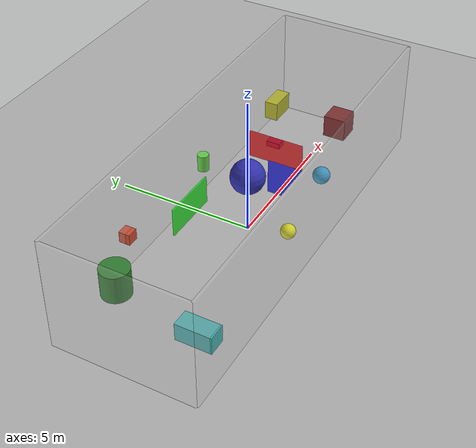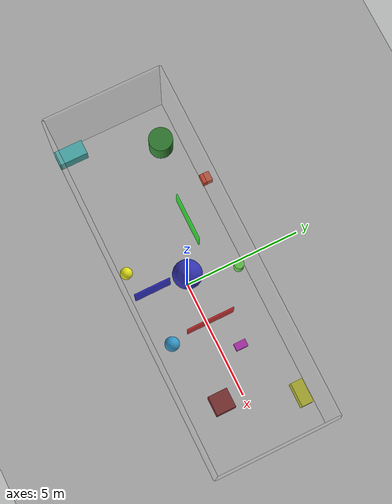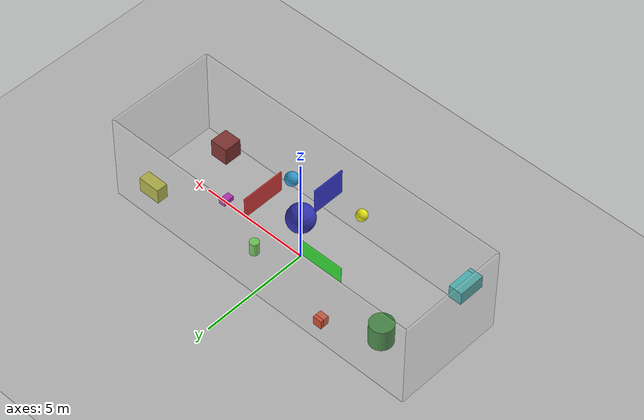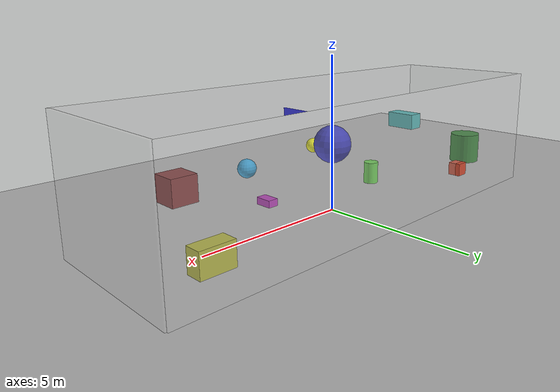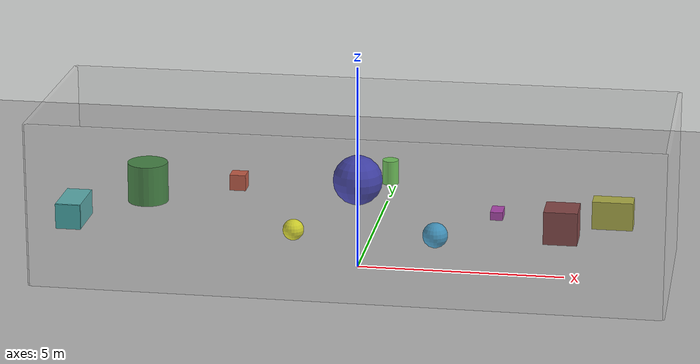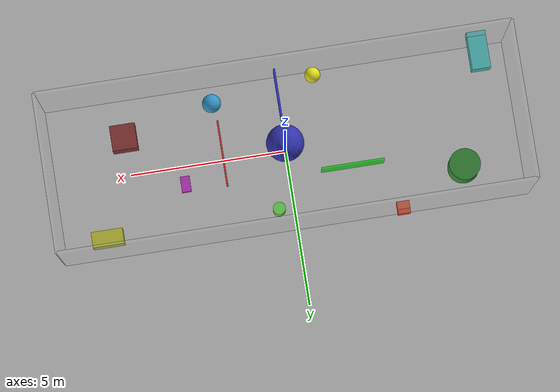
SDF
<?xml version="1.0" ?>
<sdf version="1.7">
    <world name="walled_env">

        <!-- Ground plane -->
        <model name="ground_plane">
            <static>true</static>
            <link name="ground_link">
                <collision name="collision">
                    <geometry>
                        <plane>
                            <normal>0 0 1</normal>
                            <size>15 5</size>
                        </plane>
                    </geometry>
                </collision>
                <visual name="visual">
                    <geometry>
                        <plane>
                            <normal>0 0 1</normal>
                            <size>15 5</size>
                        </plane>
                    </geometry>
                    <material>
                        <ambient>0.5 0.5 0.5 1</ambient>
                        <diffuse>0.7 0.7 0.7 1</diffuse>
                    </material>
                </visual>
            </link>
        </model>

        <!-- Walls (taller, corridor shape) -->
        <!-- Wall 1: +X -->
        <model name="wall_x_plus">
            <static>true</static>
            <pose>7.5 0 2 0 0 0</pose>
            <link name="wall_link">
                <collision name="collision">
                    <geometry>
                        <box>
                            <size>0.1 5 4</size>
                        </box>
                    </geometry>
                </collision>
                <visual name="visual">
                    <geometry>
                        <box>
                            <size>0.1 5 4</size>
                        </box>
                    </geometry>
                    <material>
                        <ambient>0.8 0.8 0.8 0.1</ambient>
                        <diffuse>0.8 0.8 0.8 0.1</diffuse>
                    </material>
                </visual>
            </link>
        </model>
        <!-- Wall 2: -X -->
        <model name="wall_x_minus">
            <static>true</static>
            <pose>-7.5 0 2 0 0 0</pose>
            <link name="wall_link">
                <collision name="collision">
                    <geometry>
                        <box>
                            <size>0.1 5 4</size>
                        </box>
                    </geometry>
                </collision>
                <visual name="visual">
                    <geometry>
                        <box>
                            <size>0.1 5 4</size>
                        </box>
                    </geometry>
                    <material>
                        <ambient>0.8 0.8 0.8 0.1</ambient>
                        <diffuse>0.8 0.8 0.8 0.1</diffuse>
                    </material>
                </visual>
            </link>
        </model>
        <!-- Wall 3: +Y -->
        <model name="wall_y_plus">
            <static>true</static>
            <pose>0 2.5 2 0 0 0</pose>
            <link name="wall_link">
                <collision name="collision">
                    <geometry>
                        <box>
                            <size>15 0.1 4</size>
                        </box>
                    </geometry>
                </collision>
                <visual name="visual">
                    <geometry>
                        <box>
                            <size>15 0.1 4</size>
                        </box>
                    </geometry>
                    <material>
                        <ambient>0.8 0.8 0.8 0.1</ambient>
                        <diffuse>0.8 0.8 0.8 0.1</diffuse>
                    </material>
                </visual>
            </link>
        </model>
        <!-- Wall 4: -Y -->
        <model name="wall_y_minus">
            <static>true</static>
            <pose>0 -2.5 2 0 0 0</pose>
            <link name="wall_link">
                <collision name="collision">
                    <geometry>
                        <box>
                            <size>15 0.1 4</size>
                        </box>
                    </geometry>
                </collision>
                <visual name="visual">
                    <geometry>
                        <box>
                            <size>15 0.1 4</size>
                        </box>
                    </geometry>
                    <material>
                        <ambient>0.8 0.8 0.8 0.1</ambient>
                        <diffuse>0.8 0.8 0.8 0.1</diffuse>
                    </material>
                </visual>
            </link>
        </model>

        <!-- Randomly suspended static objects -->
        <model name="object_1">
            <static>true</static>
            <pose>2.1 -1.7 1.5 0 0 0</pose>
            <link name="link">
                <collision name="collision">
                    <geometry>
                        <sphere>
                            <radius>0.3</radius>
                        </sphere>
                    </geometry>
                </collision>
                <visual name="visual">
                    <geometry>
                        <sphere>
                            <radius>0.3</radius>
                        </sphere>
                    </geometry>
                    <material>
                        <ambient>0.2 0.6 0.8 1</ambient>
                        <diffuse>0.2 0.6 0.8 1</diffuse>
                    </material>
                </visual>
            </link>
        </model>

        <!-- Additional and larger obstacles -->
        <model name="object_6">
            <static>true</static>
            <pose>5.0 -1.0 1.7 0 0 0</pose>
            <link name="link">
                <collision name="collision">
                    <geometry>
                        <box>
                            <size>0.8 0.8 0.8</size>
                        </box>
                    </geometry>
                </collision>
                <visual name="visual">
                    <geometry>
                        <box>
                            <size>0.8 0.8 0.8</size>
                        </box>
                    </geometry>
                    <material>
                        <ambient>0.5 0.2 0.2 1</ambient>
                        <diffuse>0.5 0.2 0.2 1</diffuse>
                    </material>
                </visual>
            </link>
        </model>
        <model name="object_7">
            <static>true</static>
            <pose>-5.5 1.5 1.4 0 0 0</pose>
            <link name="link">
                <collision name="collision">
                    <geometry>
                        <cylinder>
                            <radius>0.5</radius>
                            <length>1.0</length>
                        </cylinder>
                    </geometry>
                </collision>
                <visual name="visual">
                    <geometry>
                        <cylinder>
                            <radius>0.5</radius>
                            <length>1.0</length>
                        </cylinder>
                    </geometry>
                    <material>
                        <ambient>0.2 0.5 0.2 1</ambient>
                        <diffuse>0.2 0.5 0.2 1</diffuse>
                    </material>
                </visual>
            </link>
        </model>
        <model name="object_8">
            <static>true</static>
            <pose>0.0 0.0 2.2 0 0 0</pose>
            <link name="link">
                <collision name="collision">
                    <geometry>
                        <sphere>
                            <radius>0.6</radius>
                        </sphere>
                    </geometry>
                </collision>
                <visual name="visual">
                    <geometry>
                        <sphere>
                            <radius>0.6</radius>
                        </sphere>
                    </geometry>
                    <material>
                        <ambient>0.2 0.2 0.7 1</ambient>
                        <diffuse>0.2 0.2 0.7 1</diffuse>
                    </material>
                </visual>
            </link>
        </model>
        <model name="object_9">
            <static>true</static>
            <pose>6.0 2.0 1.0 0 0 0</pose>
            <link name="link">
                <collision name="collision">
                    <geometry>
                        <box>
                            <size>1.0 0.5 0.7</size>
                        </box>
                    </geometry>
                </collision>
                <visual name="visual">
                    <geometry>
                        <box>
                            <size>1.0 0.5 0.7</size>
                        </box>
                    </geometry>
                    <material>
                        <ambient>0.7 0.7 0.2 1</ambient>
                        <diffuse>0.7 0.7 0.2 1</diffuse>
                    </material>
                </visual>
            </link>
        </model>
        <model name="object_10">
            <static>true</static>
            <pose>-6.5 -2.0 1.8 0 0 0</pose>
            <link name="link">
                <collision name="collision">
                    <geometry>
                        <box>
                            <size>0.6 1.2 0.6</size>
                        </box>
                    </geometry>
                </collision>
                <visual name="visual">
                    <geometry>
                        <box>
                            <size>0.6 1.2 0.6</size>
                        </box>
                    </geometry>
                    <material>
                        <ambient>0.3 0.7 0.7 1</ambient>
                        <diffuse>0.3 0.7 0.7 1</diffuse>
                    </material>
                </visual>
            </link>
        </model>

        <!-- Thin panels -->
        <model name="panel_1">
            <static>true</static>
            <pose>2.0 0.0 2.0 0 0 0</pose>
            <link name="link">
                <collision name="collision">
                    <geometry>
                        <box>
                            <size>0.05 2.0 1.0</size>
                        </box>
                    </geometry>
                </collision>
                <visual name="visual">
                    <geometry>
                        <box>
                            <size>0.05 2.0 1.0</size>
                        </box>
                    </geometry>
                    <material>
                        <ambient>0.9 0.1 0.1 0.8</ambient>
                        <diffuse>0.9 0.1 0.1 0.8</diffuse>
                    </material>
                </visual>
            </link>
        </model>
        <model name="panel_2">
            <static>true</static>
            <pose>-2.0 1.0 2.0 0 0 0</pose>
            <link name="link">
                <collision name="collision">
                    <geometry>
                        <box>
                            <size>2.0 0.05 1.0</size>
                        </box>
                    </geometry>
                </collision>
                <visual name="visual">
                    <geometry>
                        <box>
                            <size>2.0 0.05 1.0</size>
                        </box>
                    </geometry>
                    <material>
                        <ambient>0.1 0.9 0.1 0.8</ambient>
                        <diffuse>0.1 0.9 0.1 0.8</diffuse>
                    </material>
                </visual>
            </link>
        </model>
        <model name="panel_3">
            <static>true</static>
            <pose>0.0 -1.5 2.5 0 0 0</pose>
            <link name="link">
                <collision name="collision">
                    <geometry>
                        <box>
                            <size>0.05 1.5 1.2</size>
                        </box>
                    </geometry>
                </collision>
                <visual name="visual">
                    <geometry>
                        <box>
                            <size>0.05 1.5 1.2</size>
                        </box>
                    </geometry>
                    <material>
                        <ambient>0.1 0.1 0.9 0.8</ambient>
                        <diffuse>0.1 0.1 0.9 0.8</diffuse>
                    </material>
                </visual>
            </link>
        </model>
        <model name="object_2">
            <static>true</static>
            <pose>-3.4 2.5 1.2 0 0 0</pose>
            <link name="link">
                <collision name="collision">
                    <geometry>
                        <box>
                            <size>0.4 0.4 0.4</size>
                        </box>
                    </geometry>
                </collision>
                <visual name="visual">
                    <geometry>
                        <box>
                            <size>0.4 0.4 0.4</size>
                        </box>
                    </geometry>
                    <material>
                        <ambient>0.8 0.3 0.2 1</ambient>
                        <diffuse>0.8 0.3 0.2 1</diffuse>
                    </material>
                </visual>
            </link>
        </model>
        <model name="object_3">
            <static>true</static>
            <pose>0.5 2.0 1.8 0 0 0</pose>
            <link name="link">
                <collision name="collision">
                    <geometry>
                        <cylinder>
                            <radius>0.2</radius>
                            <length>0.6</length>
                        </cylinder>
                    </geometry>
                </collision>
                <visual name="visual">
                    <geometry>
                        <cylinder>
                            <radius>0.2</radius>
                            <length>0.6</length>
                        </cylinder>
                    </geometry>
                    <material>
                        <ambient>0.4 0.8 0.3 1</ambient>
                        <diffuse>0.4 0.8 0.3 1</diffuse>
                    </material>
                </visual>
            </link>
        </model>
        <model name="object_4">
            <static>true</static>
            <pose>-1.2 -2.1 1.6 0 0 0</pose>
            <link name="link">
                <collision name="collision">
                    <geometry>
                        <sphere>
                            <radius>0.25</radius>
                        </sphere>
                    </geometry>
                </collision>
                <visual name="visual">
                    <geometry>
                        <sphere>
                            <radius>0.25</radius>
                        </sphere>
                    </geometry>
                    <material>
                        <ambient>0.9 0.9 0.1 1</ambient>
                        <diffuse>0.9 0.9 0.1 1</diffuse>
                    </material>
                </visual>
            </link>
        </model>
        <model name="object_5">
            <static>true</static>
            <pose>3.3 0.7 1.3 0 0 0</pose>
            <link name="link">
                <collision name="collision">
                    <geometry>
                        <box>
                            <size>0.3 0.5 0.2</size>
                        </box>
                    </geometry>
                </collision>
                <visual name="visual">
                    <geometry>
                        <box>
                            <size>0.3 0.5 0.2</size>
                        </box>
                    </geometry>
                    <material>
                        <ambient>0.7 0.2 0.7 1</ambient>
                        <diffuse>0.7 0.2 0.7 1</diffuse>
                    </material>
                </visual>
            </link>
        </model>

    </world>
</sdf>
